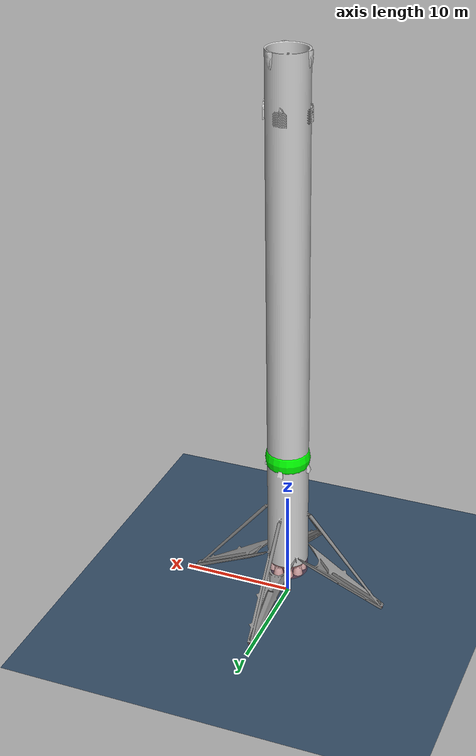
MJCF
<mujoco model="falcon9">
    <compiler meshdir="." autolimits="true"/>

    <option timestep="0.002"/>

    <visual>
        <headlight diffuse="0.6 0.6 0.6" ambient="0.3 0.3 0.3" specular="0 0 0"/>
        <rgba haze="0.15 0.25 0.35 1"/>
    </visual>

    <asset>
        <texture type="skybox" builtin="gradient" rgb1="0.3 0.5 0.7" rgb2="1 1 1" width="512" height="512"/>

        <texture name="grid" type="2d" builtin="checker" rgb1="0.2 0.3 0.4" rgb2="0.1 0.15 0.2" width="512" height="512"/>
        <material name="ground_mat" texture="grid" texrepeat="20 20" texuniform="true" reflectance="0.1"/>

        <material name="fire_mat" rgba="1 0.4 0.1 0.7" reflectance="0" emission="1"/>

        <mesh name="body_mesh" file="body.obj"/>
        <mesh name="legs_mesh" file="legs.obj"/>
    </asset>

    <worldbody>
        <light directional="true" diffuse="0.8 0.8 0.8" specular="0.2 0.2 0.2" pos="0 0 50" dir="0 -1 -1" castshadow="true"/>

        <geom name="ground" type="plane" size="100 100 0.1" rgba=".2 .3 .4 1" contype="0" conaffinity="0"/>

        <body name="rocket_main" pos="0 0 2.5">
            <freejoint name="root"/>

            <inertial pos="0 0 12" mass="25000" diaginertia="4500000 4500000 50000"/>

            <site name="com_visual" pos="0 0 12" type="sphere" size="2" rgba="0 1 0 1" />

            <camera name="track_cam" mode="trackcom" pos="70.7 -70.7 10" xyaxes="0.707 0.707 0 0 0 1"/>

            <!-- 1. 远距离全景视角 (跟随火箭) -->
            <camera name="tracking_view" mode="trackcom" pos="0 -80 20" xyaxes="1 0 0 0 0.5 0.8"/>

            <!-- 2. 近距离侧面视角 (便于观察姿态和云朵/高度) -->
            <camera name="side_view" mode="trackcom" pos="30 0 15" xyaxes="0 1 0 0 0 1"/>

            <!-- 3. 发动机特写视角 (重点观测喷管姿态) -->
            <camera name="engine_view" mode="targetbodycom" target="engine" pos="0 -5 0" xyaxes="1 0 0 0 0 1"/>

            <!-- 箭载俯视：固定在火箭侧上方，镜头朝下看向发动机和地面 -->
            <!-- pos="2 0 20" 表示装在X轴偏移2(避免被箭体完全挡住)，高度20的位置 -->
            <camera name="gopro_down" mode="fixed" pos="2.5 0 20" xyaxes="0 -1 0 1 0 0" fovy="75"/>

            <!-- 上帝俯视：装在世界坐标系中，始终悬浮在火箭上方 100 米 -->
            <camera name="sky_top_down" mode="trackcom" pos="0 0 100" xyaxes="1 0 0 0 1 0"/>

            <geom name="visual_body" type="mesh" mesh="body_mesh" contype="0" conaffinity="0" rgba="0.8 0.8 0.8 1"/>

            <body name="legs" pos="0 0 0">
                <inertial pos="0 0 0" mass="2000" diaginertia="100 100 100"/>
                <geom name="visual_legs" type="mesh" mesh="legs_mesh" contype="0" conaffinity="0" rgba="0.5 0.5 0.5 1"/>
            </body>

            <geom name="collision_body" type="cylinder" size="1.8 23" pos="0 0 23" rgba="1 0 0 0.2"/>
            <geom name="pad_1" type="sphere" size="0.15" pos=" 9  0 -2" contype="1" conaffinity="1" rgba="1 0 0 0.5"/>
            <geom name="pad_2" type="sphere" size="0.15" pos="-9  0 -2" contype="1" conaffinity="1" rgba="1 0 0 0.5"/>
            <geom name="pad_3" type="sphere" size="0.15" pos=" 0 -9 -2" contype="1" conaffinity="1" rgba="1 0 0 0.5"/>
            <geom name="pad_4" type="sphere" size="0.15" pos=" 0  9 -2" contype="1" conaffinity="1" rgba="1 0 0 0.5"/>

            <body name="engine" pos="0 0 0">
                <inertial pos="0 0 0" mass="500" diaginertia="50 50 50"/>

                <joint name="gimbal_pitch" type="hinge" axis="1 0 0" range="-15 15" stiffness="1000" damping="450"/>
                <joint name="gimbal_yaw" type="hinge" axis="0 1 0" range="-15 15" stiffness="1000" damping="450"/>

                <site name="thrust_point" type="cylinder" size="0.2 0.1" rgba="1 0.5 0 1"/>

                <geom name="fire_geom" type="capsule" size="0.25 1.5" pos="0 0 -1.5" material="fire_mat" contype="0" conaffinity="0"/>
            </body>
        </body>
    </worldbody>

    <actuator>
        <position name="ctrl_gimbal_pitch" joint="gimbal_pitch" ctrlrange="-0.26 0.26" kp="50000"/>
        <position name="ctrl_gimbal_yaw" joint="gimbal_yaw" ctrlrange="-0.26 0.26" kp="50000"/>

        <general name="ctrl_thrust" site="thrust_point" gear="0 0 1 0 0 0" ctrlrange="0 539550"/>
    </actuator>

    <sensor>
        <gyro name="body_gyro" site="thrust_point"/>
        <accelerometer name="body_accel" site="thrust_point"/>
        <velocimeter name="body_vel" site="thrust_point"/>
    </sensor>
</mujoco>
